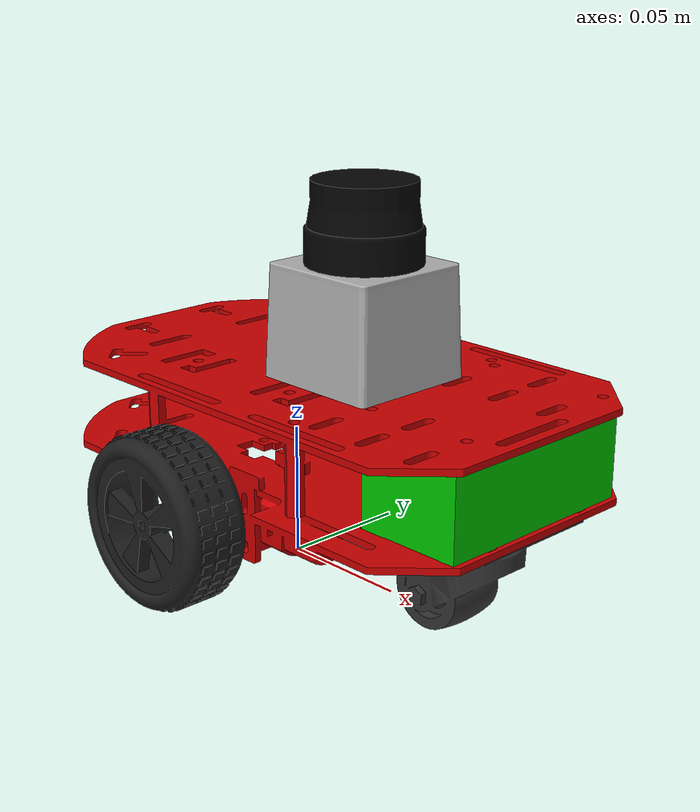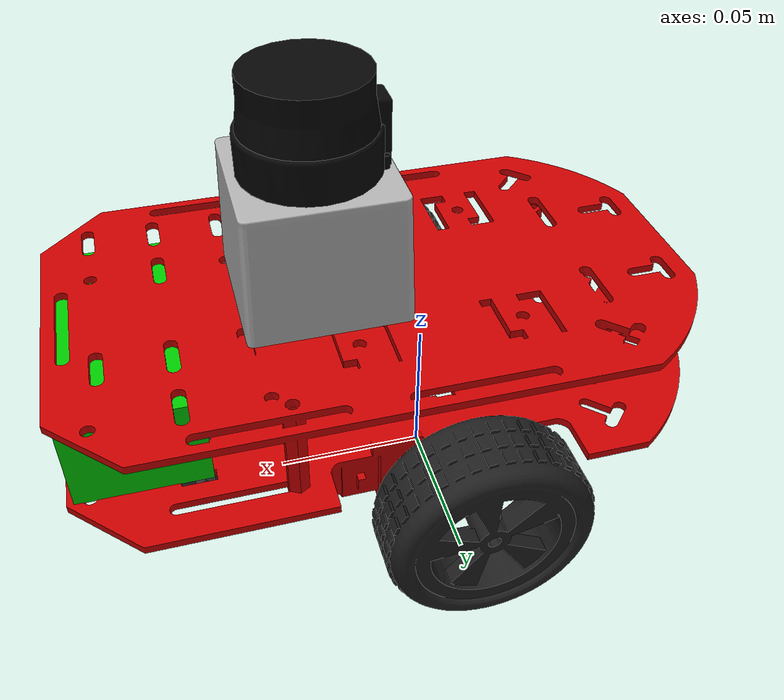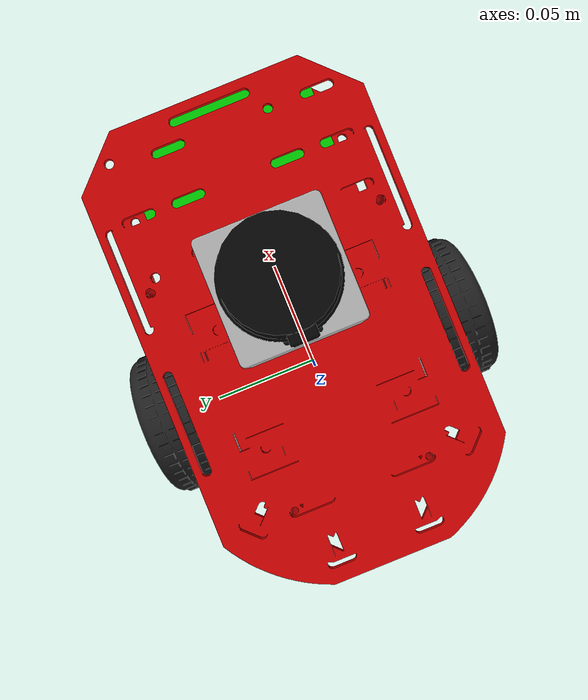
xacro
<?xml version="1.0"?>

<robot name="my_robot" xmlns:xacro="http://www.ros.org/wiki/xacro">

	<!-- Robot constants and properties -->
	<xacro:include filename="$(find my_robot_description)/urdf/my_robot_properties.xacro" />
	<!-- Import Rviz colors -->
	<xacro:include filename="$(find my_robot_description)/urdf/materials.xacro" />
	<!-- Gazebo aspects of the robot -->
	<xacro:include filename="$(find my_robot_description)/urdf/my_robot.gazebo" />
	<!-- Inertia matrices -->
	<xacro:include filename="$(find my_robot_description)/urdf/macros.xacro" />

	<!-- Used for fixing robot to Gazebo 'chassis' -->
	<link name="base_footprint" />

	<joint name="base_joint" type="fixed">
		<parent link="base_footprint"/>
		<child link="chassis"/>
	</joint>

	<link name='chassis'>

		<collision>
			<origin xyz="0 0 ${wheelRadius}"
					rpy="0 0 0"/>
			<geometry>
				<mesh filename="package://my_robot_description/meshes/chassis.dae" />
			</geometry>
		</collision>

		<visual>
			<origin xyz="0 0 ${wheelRadius}"
					rpy="0 0 0"/>
			<geometry>
				<mesh filename="package://my_robot_description/meshes/chassis.dae" />
			</geometry>
			<material name="red"/>
		</visual>

		<inertial>
			<origin xyz="0 0 ${wheelRadius}"
					rpy="0 0 0"/>
			<mass value="${chassisMass}"/>
			<xacro:box_inertia
				m="${chassisMass}"
				x="${chassisLength}"
				y="${chassisWidth}"
				z="${chassisHeight}"/>
		</inertial>

	</link>

	<joint name="caster_joint" type="fixed">
		<parent link="chassis"/>
		<child link="caster_wheel"/>
	</joint>

	<link name="caster_wheel">

		<collision>
			<origin xyz="${casterOffsetX} 0 ${2*casterRadius}"
					rpy="0 0 0"/>
			<geometry>
				<mesh filename="package://my_robot_description/meshes/caster_wheel.dae" />
	  		</geometry>
		</collision>

		<visual>
			<origin xyz="${casterOffsetX} 0 ${2*casterRadius}"
					rpy="0 0 0"/>
			<geometry>
				<mesh filename="package://my_robot_description/meshes/caster_wheel.dae" />
			</geometry>
			<material name="grey" />
		</visual>

		<inertial>
			<origin xyz="${casterOffsetX} 0 ${2*casterRadius}"
					rpy="0 0 0"/>
			<mass value="${casterMass}"/>
			<xacro:sphere_inertia
				m="${casterMass}"
				r="${casterRadius}"/>
		</inertial>

	</link>

	<xacro:wheel lr="left" tY="-1"/>
	<xacro:wheel lr="right" tY="1"/>

	<!-- Sensor models -->
	<xacro:include filename="$(find my_robot_description)/urdf/sensors.xacro" />

</robot>

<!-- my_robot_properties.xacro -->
<robot xmlns:xacro="http://www.ros.org/wiki/xacro">

	<!-- Constants -->
	<xacro:property name="PI" value="3.1415926535897931"/>

	<!-- Chassis properties -->
	<xacro:property name="chassisHeight" value="0.0623"/>
	<xacro:property name="chassisLength" value="0.198"/>
	<xacro:property name="chassisWidth" value="0.119"/>
	<xacro:property name="chassisMass" value="0.15"/>

	<!-- Caster wheel properties -->
	<xacro:property name="casterRadius" value="0.021"/>
	<xacro:property name="casterMass" value="0.09"/>
	<xacro:property name="casterOffsetX" value="0.091"/>

	<!-- Differential-drive wheels properties -->
	<xacro:property name="wheelWidth" value="0.026"/>
	<xacro:property name="wheelRadius" value="0.032"/>
	<xacro:property name="wheelMass" value="0.05"/>
	<xacro:property name="wheelOffsetY" value="0.037"/>

	<!-- Hokuyo laser properties -->
	<xacro:property name="hokuyoMass" value="0.01"/>
	<xacro:property name="hokuyoLength" value="0.05"/>
	<xacro:property name="hokuyoWidth" value="0.05"/>
	<xacro:property name="hokuyoHeight" value="0.07"/>
	<xacro:property name="hokuyoOffsetX" value="0.035"/>
	<!--xacro:property name="hokuyoOffsetX" value="0.05"/-->
	<xacro:property name="hokuyoOffsetZ" value="0.1135"/>
	<!--xacro:property name="hokuyoOffsetZ" value="0.1125"/-->

	<!-- Camera properties -->
	<xacro:property name="cameraLength" value="0.04"/>
	<xacro:property name="cameraWidth" value="0.08"/>
	<xacro:property name="cameraHeight" value="0.03"/>
	<xacro:property name="cameraMass" value="0.01"/>
	<xacro:property name="cameraOffsetX" value="0.095"/>
	<xacro:property name="cameraOffsetZ" value="0.06"/>

</robot>

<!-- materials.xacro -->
<!--
	definition of the materials used
-->

<robot>
	<material name="black">
	  <color rgba="0.0 0.0 0.0 1.0"/>
	</material>

	<material name="blue">
	  <color rgba="0.0 0.0 0.8 1.0"/>
	</material>

	<material name="green">
	  <color rgba="0.0 0.8 0.0 1.0"/>
	</material>

	<material name="grey">
	  <color rgba="0.2 0.2 0.2 1.0"/>
	</material>

	<material name="light_grey">
      <color rgba="0.6 0.6 0.6 1"/>
    </material>

    <material name="dark_grey">
      <color rgba="0.3 0.3 0.3 1"/>
    </material>

	<material name="orange">
	  <color rgba="${255/255} ${108/255} ${10/255} 1.0"/>
	</material>

	<material name="brown">
	  <color rgba="${222/255} ${207/255} ${195/255} 1.0"/>
	</material>

	<material name="red">
	  <color rgba="0.8 0.0 0.0 1.0"/>
	</material>

	<material name="white">
	  <color rgba="1.0 1.0 1.0 1.0"/>
	</material>

</robot>

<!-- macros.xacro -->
<!--
	definitions of some macros for easier description of the robot
-->

<robot xmlns:xacro="http://www.ros.org/wiki/xacro">

  <xacro:macro name="cylinder_inertia" params="m r h">

    <inertia
          ixx="${m*(3*r*r+h*h)/12}"
    			ixy = "0"
    			ixz = "0"
    			iyy="${m*(3*r*r+h*h)/12}"
    			iyz = "0"
    			izz="${m*r*r/2}"
    />
  </xacro:macro>

  <xacro:macro name="box_inertia" params="m x y z">

    <inertia
          ixx="${m*(y*y+z*z)/12}"
    			ixy = "0"
    			ixz = "0"
    			iyy="${m*(x*x+z*z)/12}"
    			iyz = "0"
    			izz="${m*(x*x+z*z)/12}"
    />
  </xacro:macro>

  <xacro:macro name="sphere_inertia" params="m r">

    <inertia
          ixx="${2*m*r*r/5}"
    			ixy = "0"
    			ixz = "0"
    			iyy="${2*m*r*r/5}"
    			iyz = "0"
    			izz="${2*m*r*r/5}"
    />
  </xacro:macro>

  <xacro:macro name="wheel" params="lr tY">

    <link name="${lr}_wheel">
      <collision>
        <origin xyz="0 0 0"
        		rpy="${-tY*PI/2} 0 0" />
        <geometry>
          <cylinder
            length="${wheelWidth}"
            radius="${wheelRadius}"/>
        </geometry>
      </collision>

      <visual>
        <origin xyz="0 0 0"
        		rpy="${-tY*PI/2} 0 0" />
        <geometry>
          <mesh filename="package://my_robot_description/meshes/${lr}_wheel.dae" />
        </geometry>
      </visual>

      <inertial>
        <origin xyz="0 0 0"
        		rpy="${-tY*PI/2} 0 0" />
        <mass value="${wheelMass}"/>
        <xacro:cylinder_inertia
          m="${wheelMass}"
          r="${wheelRadius}"
          h="${wheelWidth}"/>
      </inertial>
    </link>

    <gazebo reference="${lr}_wheel">
      <mu1 value="1.0"/>
      <mu2 value="1.0"/>
      <kp  value="10000000.0" />

      <kd>100.0</kd>
      <minDepth>0.001</minDepth>
      <maxVel>1.0</maxVel>

      <material>Gazebo/FlatBlack</material>
    </gazebo>

    <joint name="${lr}_wheel_hinge" type="continuous">
      <parent link="chassis"/>
      <child link="${lr}_wheel"/>
      <origin
        xyz = "0 ${-tY*(wheelOffsetY+wheelWidth)} ${wheelRadius}"
        rpy = "0 0 0" />
      <axis xyz="0 1 0"
      		  rpy="0 0 0" />
      <!--limit effort="100" velocity="10"/-->
      <limit effort="0.0" velocity="0.0"/>
      <joint_properties damping="0.0" friction="0.0"/>
    </joint>

<!--
  http://gazebosim.org/tutorials/?tut=ros_control
-->

    <transmission name="${lr}_trans">
      <type>transmission_interface/SimpleTransmission</type>
      <joint name="${lr}_wheel_hinge">
        <hardwareInterface>hardware_interface/EffortJointInterface</hardwareInterface>
      </joint>
      <actuator name="${lr}Motor">
        <hardwareInterface>hardware_interface/EffortJointInterface</hardwareInterface>
        <mechanicalReduction>10</mechanicalReduction>
      </actuator>
    </transmission>

  </xacro:macro>

</robot>

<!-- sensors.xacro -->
<robot xmlns:xacro="http://www.ros.org/wiki/xacro">

  <!-- Robot constants and properties -->
  <xacro:include filename="$(find my_robot_description)/urdf/my_robot_properties.xacro" />
  <!-- Inertia matrices -->
  <xacro:include filename="$(find my_robot_description)/urdf/macros.xacro" />
  <!-- Gazebo aspects of the robot -->
  <xacro:include filename="$(find my_robot_description)/urdf/my_robot.gazebo" />

  <link name="camera_link">
    <collision>
      <origin xyz="0 0 0"
              rpy="0 0 0"/>
      <geometry>
        <box size="${cameraLength}
                   ${cameraWidth}
                   ${cameraHeight}"/>
      </geometry>
    </collision>

    <visual>
      <origin xyz="0 0 0"
              rpy="0 0 0"/>
      <geometry>
        <box size="${cameraLength}
                   ${cameraWidth}
                   ${cameraHeight}"/>
      </geometry>
      <material name="green"/>
    </visual>

    <inertial>
      <mass value="${cameraMass}" />
      <origin xyz="0 0 0"
              rpy="0 0 0"/>
      <xacro:box_inertia m="${cameraMass}"
                   x="${cameraLength}"
                   y="${cameraWidth}"
                   z="${cameraHeight}" />
    </inertial>

  </link>

  <joint name="camera_joint" type="fixed">
    <axis xyz="0 1 0" />
    <origin xyz="${cameraOffsetX} 0 ${cameraOffsetZ}"
            rpy="0 0 0"/>
    <parent link="chassis"/>
    <child link="camera_link"/>
  </joint>

  <joint name="hokuyo_joint" type="fixed">
    <axis xyz="0 1 0" />
    <origin xyz="${hokuyoOffsetX} 0 ${hokuyoOffsetZ}"
            rpy="0 0 0"/>
    <parent link="chassis"/>
    <child link="hokuyo_link"/>
  </joint>

  <!-- Hokuyo Laser -->
  <link name="hokuyo_link">
    <collision>
      <origin xyz="0 0 0"
              rpy="0 0 0"/>
      <geometry>
        <box size="${hokuyoLength}
                   ${hokuyoWidth}
                   ${hokuyoHeight}"/>
      </geometry>
    </collision>

    <visual>
      <origin xyz="0 0 0"
              rpy="0 0 0"/>
      <geometry>
        <mesh filename="package://my_robot_description/meshes/hokuyo.dae"/>
      </geometry>
    </visual>

    <inertial>
      <mass value="${hokuyoMass}" />
      <origin xyz="0 0 0"
              rpy="0 0 0"/>
      <xacro:box_inertia
        m="${hokuyoMass}"
        x="${hokuyoLength}"
        y="${hokuyoWidth}"
        z="${hokuyoHeight}"/>
    </inertial>

  </link>

</robot>
